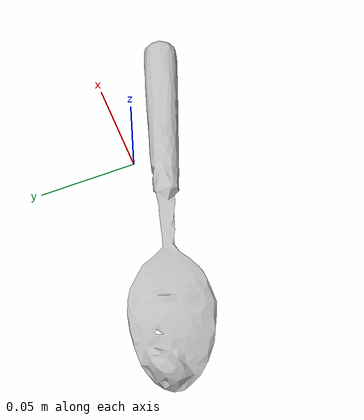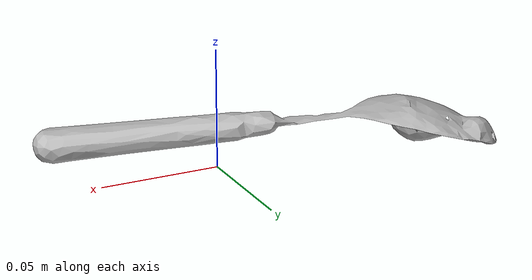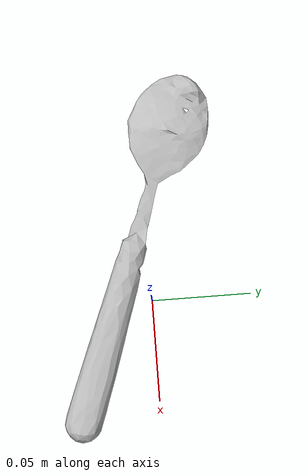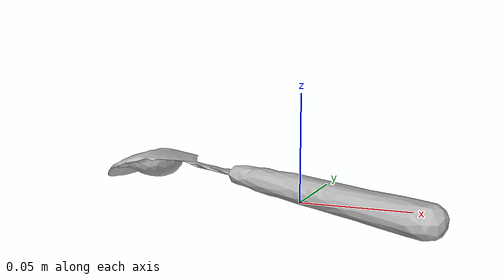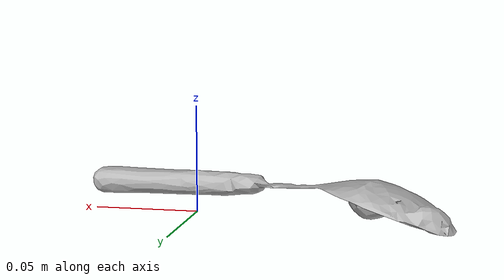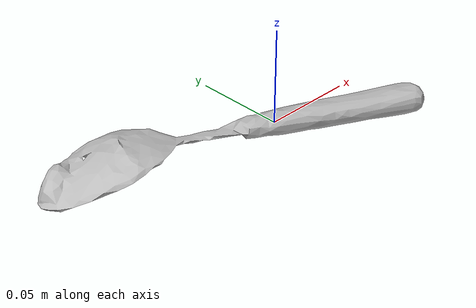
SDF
<?xml version="1.0" ?>
<sdf version="1.4">
  <model name='ycb_031_spoon'>
    <link name='body'>
      <inertial>
        <mass>0.03</mass>
        <pose>-0.0180559169141 -0.0101605650861 0.010048592474 0 0 0</pose>
        <inertia>
          <ixx>1.42613671184e-05</ixx>
          <ixy>3.51581177665e-05</ixy>
          <ixz>2.98776248622e-06</ixz>
          <iyy>9.87797131272e-05</iyy>
          <iyz>-1.04466163266e-06</iyz>
          <izz>0.000112109594868</izz>
        </inertia>
      </inertial>
      <visual name='ycb_031_spoon_visual'>
        <pose>0 0 0 0 0 0</pose>
        <geometry>
          <mesh>
            <uri>model://ycb_031_spoon/meshes/textured.dae</uri>
          </mesh>
        </geometry>
      </visual>
      <collision name='ycb_031_spoon_collision'>
        <pose>0 0 0 0 0 0</pose>
        <geometry>
          <mesh>
            <uri>model://ycb_031_spoon/meshes/nontextured.stl</uri>
          </mesh>
        </geometry>
        <max_contacts>10</max_contacts>
        <surface>
          <contact>
            <ode>
              <kp>1e15</kp>
              <kd>1e13</kd>
            </ode>
          </contact>
        </surface>
      </collision>
    </link>
  </model>
</sdf>
